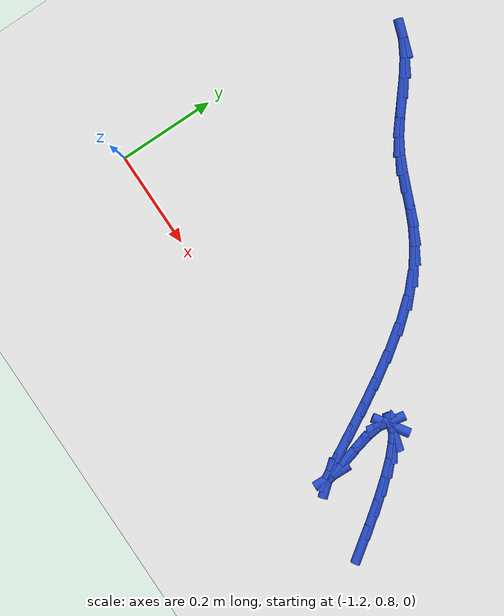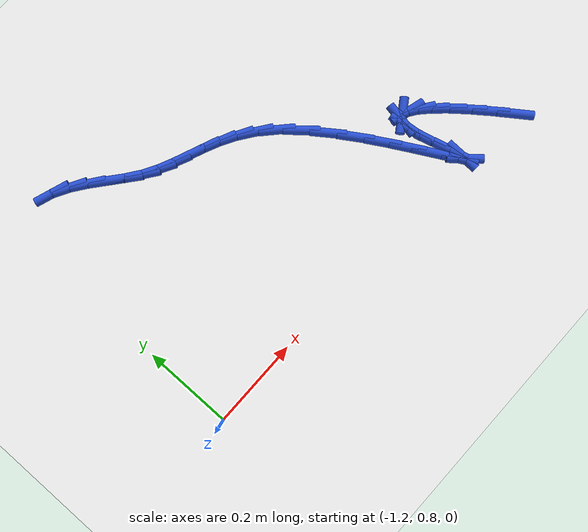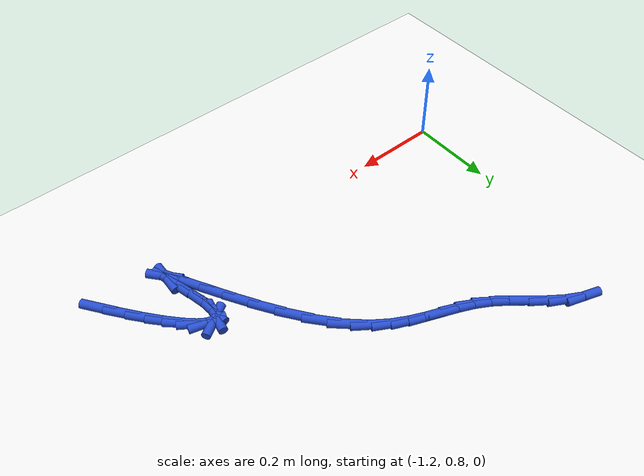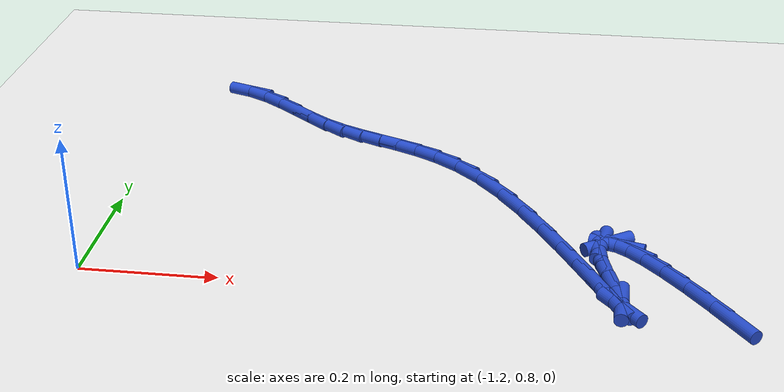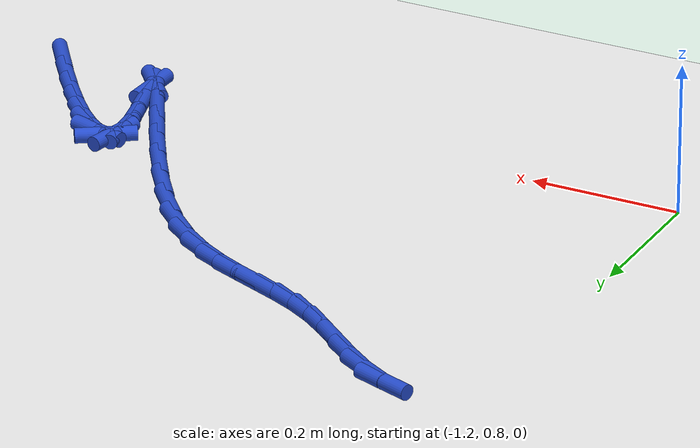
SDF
<sdf version="1.6">
 <world name="default">
  <model name="ground_plane">
   <static>1</static>
   <link name="link">
    <collision name="collision">
     <geometry><plane><normal>0 0 1</normal><size>100 100</size></plane></geometry>
     <surface><friction><ode><mu>100</mu><mu2>50</mu2></ode></friction></surface>
    </collision>
    <visual name="visual">
     <cast_shadows>0</cast_shadows>
     <geometry><plane><normal>0 0 1</normal><size>100 100</size></plane></geometry>
     <material>
      <script><uri>file://media/materials/scripts/gazebo.material</uri><name>Gazebo/WhiteGlow</name></script>
     </material>
    </visual>
   </link>
  </model>
  <model name="line">
   <link name="link_17">
    <pose>-0.3063393483964836 0.7662016997034492 0.01 0 1.57 -0.950301166007441</pose>
    <collision name="collision">
     <geometry><cylinder><radius>0.01</radius><length>0.08</length></cylinder></geometry>
    </collision>
    <visual name="visual">
     <material>
      <script><name>Gazebo/Blue</name><uri>file://media/materials/scripts/gazebo.material</uri></script>
     </material>
     <geometry><cylinder><radius>0.01</radius><length>0.08</length></cylinder></geometry>
    </visual>
   </link>
   <link name="link_18">
    <pose>-0.33708712931176865 0.8092262409652528 0.01 0 1.57 -0.9215154018738458</pose>
    <collision name="collision">
     <geometry><cylinder><radius>0.01</radius><length>0.08</length></cylinder></geometry>
    </collision>
    <visual name="visual">
     <material>
      <script><name>Gazebo/Blue</name><uri>file://media/materials/scripts/gazebo.material</uri></script>
     </material>
     <geometry><cylinder><radius>0.01</radius><length>0.08</length></cylinder></geometry>
    </visual>
   </link>
   <link name="link_19">
    <pose>-0.3662722002703386 0.8476746795147095 0.01 0 1.57 -0.8848252127844743</pose>
    <collision name="collision">
     <geometry><cylinder><radius>0.01</radius><length>0.08</length></cylinder></geometry>
    </collision>
    <visual name="visual">
     <material>
      <script><name>Gazebo/Blue</name><uri>file://media/materials/scripts/gazebo.material</uri></script>
     </material>
     <geometry><cylinder><radius>0.01</radius><length>0.08</length></cylinder></geometry>
    </visual>
   </link>
   <link name="link_20">
    <pose>-0.393351766386243 0.8807556159236913 0.01 0 1.57 -0.8338627794343835</pose>
    <collision name="collision">
     <geometry><cylinder><radius>0.01</radius><length>0.08</length></cylinder></geometry>
    </collision>
    <visual name="visual">
     <material>
      <script><name>Gazebo/Blue</name><uri>file://media/materials/scripts/gazebo.material</uri></script>
     </material>
     <geometry><cylinder><radius>0.01</radius><length>0.08</length></cylinder></geometry>
    </visual>
   </link>
   <link name="link_21">
    <pose>-0.4177830327735318 0.9076776507640707 0.01 0 1.57 -0.7546294425116679</pose>
    <collision name="collision">
     <geometry><cylinder><radius>0.01</radius><length>0.08</length></cylinder></geometry>
    </collision>
    <visual name="visual">
     <material>
      <script><name>Gazebo/Blue</name><uri>file://media/materials/scripts/gazebo.material</uri></script>
     </material>
     <geometry><cylinder><radius>0.01</radius><length>0.08</length></cylinder></geometry>
    </visual>
   </link>
   <link name="link_22">
    <pose>-0.43902320454625454 0.9276493846077196 0.01 0 1.57 -0.6097913006778211</pose>
    <collision name="collision">
     <geometry><cylinder><radius>0.01</radius><length>0.08</length></cylinder></geometry>
    </collision>
    <visual name="visual">
     <material>
      <script><name>Gazebo/Blue</name><uri>file://media/materials/scripts/gazebo.material</uri></script>
     </material>
     <geometry><cylinder><radius>0.01</radius><length>0.08</length></cylinder></geometry>
    </visual>
   </link>
   <link name="link_23">
    <pose>-0.4565294868184614 0.9398794180265105 0.01 0 1.57 -0.2724931772572617</pose>
    <collision name="collision">
     <geometry><cylinder><radius>0.01</radius><length>0.08</length></cylinder></geometry>
    </collision>
    <visual name="visual">
     <material>
      <script><name>Gazebo/Blue</name><uri>file://media/materials/scripts/gazebo.material</uri></script>
     </material>
     <geometry><cylinder><radius>0.01</radius><length>0.08</length></cylinder></geometry>
    </visual>
   </link>
   <link name="link_24">
    <pose>-0.4697590847042017 0.943576351592315 0.01 0 1.57 0.5897145132117619</pose>
    <collision name="collision">
     <geometry><cylinder><radius>0.01</radius><length>0.08</length></cylinder></geometry>
    </collision>
    <visual name="visual">
     <material>
      <script><name>Gazebo/Blue</name><uri>file://media/materials/scripts/gazebo.material</uri></script>
     </material>
     <geometry><cylinder><radius>0.01</radius><length>0.08</length></cylinder></geometry>
    </visual>
   </link>
   <link name="link_25">
    <pose>-0.47816920331752594 0.9379487858770065 0.01 0 1.57 1.379567644341341</pose>
    <collision name="collision">
     <geometry><cylinder><radius>0.01</radius><length>0.08</length></cylinder></geometry>
    </collision>
    <visual name="visual">
     <material>
      <script><name>Gazebo/Blue</name><uri>file://media/materials/scripts/gazebo.material</uri></script>
     </material>
     <geometry><cylinder><radius>0.01</radius><length>0.08</length></cylinder></geometry>
    </visual>
   </link>
   <link name="link_26">
    <pose>-0.4812170477724832 0.9222053214524562 0.01 0 1.57 -1.4639944097389546</pose>
    <collision name="collision">
     <geometry><cylinder><radius>0.01</radius><length>0.08</length></cylinder></geometry>
    </collision>
    <visual name="visual">
     <material>
      <script><name>Gazebo/Blue</name><uri>file://media/materials/scripts/gazebo.material</uri></script>
     </material>
     <geometry><cylinder><radius>0.01</radius><length>0.08</length></cylinder></geometry>
    </visual>
   </link>
   <link name="link_27">
    <pose>-0.47835982318312364 0.8955545588905367 0.01 0 1.57 -1.3381597056038583</pose>
    <collision name="collision">
     <geometry><cylinder><radius>0.01</radius><length>0.08</length></cylinder></geometry>
    </collision>
    <visual name="visual">
     <material>
      <script><name>Gazebo/Blue</name><uri>file://media/materials/scripts/gazebo.material</uri></script>
     </material>
     <geometry><cylinder><radius>0.01</radius><length>0.08</length></cylinder></geometry>
    </visual>
   </link>
   <link name="link_28">
    <pose>-0.46950901822485164 0.8581977664622289 0.01 0 1.57 -1.2982125872773014</pose>
    <collision name="collision">
     <geometry><cylinder><radius>0.01</radius><length>0.08</length></cylinder></geometry>
    </collision>
    <visual name="visual">
     <material>
      <script><name>Gazebo/Blue</name><uri>file://media/materials/scripts/gazebo.material</uri></script>
     </material>
     <geometry><cylinder><radius>0.01</radius><length>0.08</length></cylinder></geometry>
    </visual>
   </link>
   <link name="link_29">
    <pose>-0.45856823571531413 0.8190594925597314 0.01 0 1.57 -1.3189017724294652</pose>
    <collision name="collision">
     <geometry><cylinder><radius>0.01</radius><length>0.08</length></cylinder></geometry>
    </collision>
    <visual name="visual">
     <material>
      <script><name>Gazebo/Blue</name><uri>file://media/materials/scripts/gazebo.material</uri></script>
     </material>
     <geometry><cylinder><radius>0.01</radius><length>0.08</length></cylinder></geometry>
    </visual>
   </link>
   <link name="link_30">
    <pose>-0.4514762203615382 0.791502807825515 0.01 0 1.57 1.539509314190848</pose>
    <collision name="collision">
     <geometry><cylinder><radius>0.01</radius><length>0.08</length></cylinder></geometry>
    </collision>
    <visual name="visual">
     <material>
      <script><name>Gazebo/Blue</name><uri>file://media/materials/scripts/gazebo.material</uri></script>
     </material>
     <geometry><cylinder><radius>0.01</radius><length>0.08</length></cylinder></geometry>
    </visual>
   </link>
   <link name="link_31">
    <pose>-0.4517419446303152 0.7830124619214686 0.01 0 1.57 -0.870355206022637</pose>
    <collision name="collision">
     <geometry><cylinder><radius>0.01</radius><length>0.08</length></cylinder></geometry>
    </collision>
    <visual name="visual">
     <material>
      <script><name>Gazebo/Blue</name><uri>file://media/materials/scripts/gazebo.material</uri></script>
     </material>
     <geometry><cylinder><radius>0.01</radius><length>0.08</length></cylinder></geometry>
    </visual>
   </link>
   <link name="link_32">
    <pose>-0.4589312431201624 0.7915402603295756 0.01 0 1.57 -1.0388316380422888</pose>
    <collision name="collision">
     <geometry><cylinder><radius>0.01</radius><length>0.08</length></cylinder></geometry>
    </collision>
    <visual name="visual">
     <material>
      <script><name>Gazebo/Blue</name><uri>file://media/materials/scripts/gazebo.material</uri></script>
     </material>
     <geometry><cylinder><radius>0.01</radius><length>0.08</length></cylinder></geometry>
    </visual>
   </link>
   <link name="link_33">
    <pose>-0.4722526365195251 0.8141741651478928 0.01 0 1.57 -1.0666689024938116</pose>
    <collision name="collision">
     <geometry><cylinder><radius>0.01</radius><length>0.08</length></cylinder></geometry>
    </collision>
    <visual name="visual">
     <material>
      <script><name>Gazebo/Blue</name><uri>file://media/materials/scripts/gazebo.material</uri></script>
     </material>
     <geometry><cylinder><radius>0.01</radius><length>0.08</length></cylinder></geometry>
    </visual>
   </link>
   <link name="link_34">
    <pose>-0.49091464551684816 0.8480021384744763 0.01 0 1.57 -1.0670302537280683</pose>
    <collision name="collision">
     <geometry><cylinder><radius>0.01</radius><length>0.08</length></cylinder></geometry>
    </collision>
    <visual name="visual">
     <material>
      <script><name>Gazebo/Blue</name><uri>file://media/materials/scripts/gazebo.material</uri></script>
     </material>
     <geometry><cylinder><radius>0.01</radius><length>0.08</length></cylinder></geometry>
    </visual>
   </link>
   <link name="link_35">
    <pose>-0.5141257908005769 0.8901121424073829 0.01 0 1.57 -1.054236030854977</pose>
    <collision name="collision">
     <geometry><cylinder><radius>0.01</radius><length>0.08</length></cylinder></geometry>
    </collision>
    <visual name="visual">
     <material>
      <script><name>Gazebo/Blue</name><uri>file://media/materials/scripts/gazebo.material</uri></script>
     </material>
     <geometry><cylinder><radius>0.01</radius><length>0.08</length></cylinder></geometry>
    </visual>
   </link>
   <link name="link_36">
    <pose>-0.541094593059156 0.9375921390446683 0.01 0 1.57 -1.0307861251179917</pose>
    <collision name="collision">
     <geometry><cylinder><radius>0.01</radius><length>0.08</length></cylinder></geometry>
    </collision>
    <visual name="visual">
     <material>
      <script><name>Gazebo/Blue</name><uri>file://media/materials/scripts/gazebo.material</uri></script>
     </material>
     <geometry><cylinder><radius>0.01</radius><length>0.08</length></cylinder></geometry>
    </visual>
   </link>
   <link name="link_37">
    <pose>-0.5710295729810311 0.9875300904843897 0.01 0 1.57 -0.9952005250413384</pose>
    <collision name="collision">
     <geometry><cylinder><radius>0.01</radius><length>0.08</length></cylinder></geometry>
    </collision>
    <visual name="visual">
     <material>
      <script><name>Gazebo/Blue</name><uri>file://media/materials/scripts/gazebo.material</uri></script>
     </material>
     <geometry><cylinder><radius>0.01</radius><length>0.08</length></cylinder></geometry>
    </visual>
   </link>
   <link name="link_38">
    <pose>-0.6031392512546468 1.037013958824603 0.01 0 1.57 -0.9426709413316726</pose>
    <collision name="collision">
     <geometry><cylinder><radius>0.01</radius><length>0.08</length></cylinder></geometry>
    </collision>
    <visual name="visual">
     <material>
      <script><name>Gazebo/Blue</name><uri>file://media/materials/scripts/gazebo.material</uri></script>
     </material>
     <geometry><cylinder><radius>0.01</radius><length>0.08</length></cylinder></geometry>
    </visual>
   </link>
   <link name="link_39">
    <pose>-0.6366321485684485 1.0831317061633643 0.01 0 1.57 -0.8630929056633433</pose>
    <collision name="collision">
     <geometry><cylinder><radius>0.01</radius><length>0.08</length></cylinder></geometry>
    </collision>
    <visual name="visual">
     <material>
      <script><name>Gazebo/Blue</name><uri>file://media/materials/scripts/gazebo.material</uri></script>
     </material>
     <geometry><cylinder><radius>0.01</radius><length>0.08</length></cylinder></geometry>
    </visual>
   </link>
   <link name="link_40">
    <pose>-0.6707168179998384 1.1229715028209317 0.01 0 1.57 -0.7481307942963765</pose>
    <collision name="collision">
     <geometry><cylinder><radius>0.01</radius><length>0.08</length></cylinder></geometry>
    </collision>
    <visual name="visual">
     <material>
      <script><name>Gazebo/Blue</name><uri>file://media/materials/scripts/gazebo.material</uri></script>
     </material>
     <geometry><cylinder><radius>0.01</radius><length>0.08</length></cylinder></geometry>
    </visual>
   </link>
   <link name="link_41">
    <pose>-0.7047470712711574 1.1545553582160215 0.01 0 1.57 -0.625735015658876</pose>
    <collision name="collision">
     <geometry><cylinder><radius>0.01</radius><length>0.08</length></cylinder></geometry>
    </collision>
    <visual name="visual">
     <material>
      <script><name>Gazebo/Blue</name><uri>file://media/materials/scripts/gazebo.material</uri></script>
     </material>
     <geometry><cylinder><radius>0.01</radius><length>0.08</length></cylinder></geometry>
    </visual>
   </link>
   <link name="link_42">
    <pose>-0.7385558777556922 1.178985691535526 0.01 0 1.57 -0.5159869314029824</pose>
    <collision name="collision">
     <geometry><cylinder><radius>0.01</radius><length>0.08</length></cylinder></geometry>
    </collision>
    <visual name="visual">
     <material>
      <script><name>Gazebo/Blue</name><uri>file://media/materials/scripts/gazebo.material</uri></script>
     </material>
     <geometry><cylinder><radius>0.01</radius><length>0.08</length></cylinder></geometry>
    </visual>
   </link>
   <link name="link_43">
    <pose>-0.772074865947716 1.1979991819419553 0.01 0 1.57 -0.43311215887693355</pose>
    <collision name="collision">
     <geometry><cylinder><radius>0.01</radius><length>0.08</length></cylinder></geometry>
    </collision>
    <visual name="visual">
     <material>
      <script><name>Gazebo/Blue</name><uri>file://media/materials/scripts/gazebo.material</uri></script>
     </material>
     <geometry><cylinder><radius>0.01</radius><length>0.08</length></cylinder></geometry>
    </visual>
   </link>
   <link name="link_44">
    <pose>-0.8052356643415015 1.2133325085978182 0.01 0 1.57 -0.388281118846768</pose>
    <collision name="collision">
     <geometry><cylinder><radius>0.01</radius><length>0.08</length></cylinder></geometry>
    </collision>
    <visual name="visual">
     <material>
      <script><name>Gazebo/Blue</name><uri>file://media/materials/scripts/gazebo.material</uri></script>
     </material>
     <geometry><cylinder><radius>0.01</radius><length>0.08</length></cylinder></geometry>
    </visual>
   </link>
   <link name="link_45">
    <pose>-0.8379699014313224 1.2267223506656253 0.01 0 1.57 -0.38816540189397314</pose>
    <collision name="collision">
     <geometry><cylinder><radius>0.01</radius><length>0.08</length></cylinder></geometry>
    </collision>
    <visual name="visual">
     <material>
      <script><name>Gazebo/Blue</name><uri>file://media/materials/scripts/gazebo.material</uri></script>
     </material>
     <geometry><cylinder><radius>0.01</radius><length>0.08</length></cylinder></geometry>
    </visual>
   </link>
   <link name="link_46">
    <pose>-0.8702092057114514 1.239905387307886 0.01 0 1.57 -0.434831123835856</pose>
    <collision name="collision">
     <geometry><cylinder><radius>0.01</radius><length>0.08</length></cylinder></geometry>
    </collision>
    <visual name="visual">
     <material>
      <script><name>Gazebo/Blue</name><uri>file://media/materials/scripts/gazebo.material</uri></script>
     </material>
     <geometry><cylinder><radius>0.01</radius><length>0.08</length></cylinder></geometry>
    </visual>
   </link>
   <link name="link_47">
    <pose>-0.9018852056761617 1.2546182976871103 0.01 0 1.57 -0.5249508858070039</pose>
    <collision name="collision">
     <geometry><cylinder><radius>0.01</radius><length>0.08</length></cylinder></geometry>
    </collision>
    <visual name="visual">
     <material>
      <script><name>Gazebo/Blue</name><uri>file://media/materials/scripts/gazebo.material</uri></script>
     </material>
     <geometry><cylinder><radius>0.01</radius><length>0.08</length></cylinder></geometry>
    </visual>
   </link>
   <link name="link_48">
    <pose>-0.9329295303087153 1.2725977577600767 0.01 0 1.57 -0.6314821438073815</pose>
    <collision name="collision">
     <geometry><cylinder><radius>0.01</radius><length>0.08</length></cylinder></geometry>
    </collision>
    <visual name="visual">
     <material>
      <script><name>Gazebo/Blue</name><uri>file://media/materials/scripts/gazebo.material</uri></script>
     </material>
     <geometry><cylinder><radius>0.01</radius><length>0.08</length></cylinder></geometry>
    </visual>
   </link>
   <link name="link_49">
    <pose>-0.963382116963484 1.294870391382647 0.01 0 1.57 -0.6875152324769321</pose>
    <collision name="collision">
     <geometry><cylinder><radius>0.01</radius><length>0.08</length></cylinder></geometry>
    </collision>
    <visual name="visual">
     <material>
      <script><name>Gazebo/Blue</name><uri>file://media/materials/scripts/gazebo.material</uri></script>
     </material>
     <geometry><cylinder><radius>0.01</radius><length>0.08</length></cylinder></geometry>
    </visual>
   </link>
   <link name="link_50">
    <pose>-0.9936948429544761 1.3197622108993552 0.01 0 1.57 -0.6868659327365862</pose>
    <collision name="collision">
     <geometry><cylinder><radius>0.01</radius><length>0.08</length></cylinder></geometry>
    </collision>
    <visual name="visual">
     <material>
      <script><name>Gazebo/Blue</name><uri>file://media/materials/scripts/gazebo.material</uri></script>
     </material>
     <geometry><cylinder><radius>0.01</radius><length>0.08</length></cylinder></geometry>
    </visual>
   </link>
   <link name="link_51">
    <pose>-1.024417506389878 1.344957275822134 0.01 0 1.57 -0.6316932384821966</pose>
    <collision name="collision">
     <geometry><cylinder><radius>0.01</radius><length>0.08</length></cylinder></geometry>
    </collision>
    <visual name="visual">
     <material>
      <script><name>Gazebo/Blue</name><uri>file://media/materials/scripts/gazebo.material</uri></script>
     </material>
     <geometry><cylinder><radius>0.01</radius><length>0.08</length></cylinder></geometry>
    </visual>
   </link>
   <link name="link_52">
    <pose>-1.0560999053778746 1.368139645662913 0.01 0 1.57 -0.5165740031825229</pose>
    <collision name="collision">
     <geometry><cylinder><radius>0.01</radius><length>0.08</length></cylinder></geometry>
    </collision>
    <visual name="visual">
     <material>
      <script><name>Gazebo/Blue</name><uri>file://media/materials/scripts/gazebo.material</uri></script>
     </material>
     <geometry><cylinder><radius>0.01</radius><length>0.08</length></cylinder></geometry>
    </visual>
   </link>
   <link name="link_53">
    <pose>-1.0892918380266514 1.386993379933624 0.01 0 1.57 -0.3334164865474294</pose>
    <collision name="collision">
     <geometry><cylinder><radius>0.01</radius><length>0.08</length></cylinder></geometry>
    </collision>
    <visual name="visual">
     <material>
      <script><name>Gazebo/Blue</name><uri>file://media/materials/scripts/gazebo.material</uri></script>
     </material>
     <geometry><cylinder><radius>0.01</radius><length>0.08</length></cylinder></geometry>
    </visual>
   </link>
  </model>
 </world>
</sdf>
